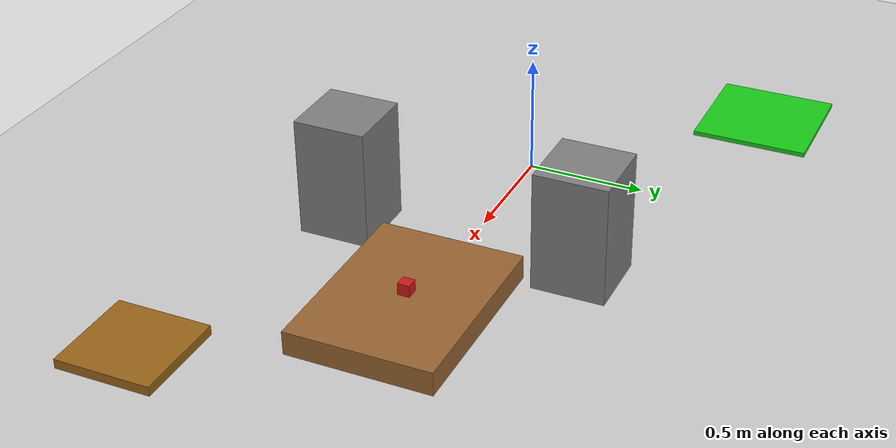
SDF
<?xml version="1.0" ?>
<sdf version="1.6">
  <world name="training_world">

    <include>
      <uri>model://sun</uri>
    </include>

    <include>
      <uri>model://ground_plane</uri>
    </include>

    <!-- Misma física que empty_world -->
    <physics name="default_physics" default="0" type="ode">
      <max_step_size>0.001</max_step_size>
      <real_time_factor>1</real_time_factor>
      <real_time_update_rate>1000</real_time_update_rate>
      <ode>
        <solver>
          <iters>50</iters>
        </solver>
      </ode>
    </physics>

    <!-- PLATAFORMA BAJA (estática)                                        -->
    <!-- 0.8 × 0.6 × 0.10 m  |  pose = centro geométrico                 -->
    <!-- Altura reducida para que la base del robot NO colisione al       -->
    <!-- acercarse. El brazo baja desde EE home (z=0.747) hasta z≈0.125. -->
    <model name="table">
      <static>true</static>
      <pose>1.2 0.0 0.05 0 0 0</pose>
      <link name="link">
        <collision name="collision">
          <geometry>
            <box><size>0.8 0.6 0.10</size></box>
          </geometry>
        </collision>
        <visual name="visual">
          <geometry>
            <box><size>0.8 0.6 0.10</size></box>
          </geometry>
          <material>
            <ambient>0.6 0.4 0.2 1</ambient>
            <diffuse>0.6 0.4 0.2 1</diffuse>
          </material>
        </visual>
      </link>
    </model>

    <!-- CUBO ROJO (dinámico — manipulable)                               -->
    <!-- 0.05 × 0.05 × 0.05 m  |  sobre plataforma: z = 0.10 + 0.025 = 0.125 -->
    <model name="red_cube">
      <pose>1.2 0.0 0.125 0 0 0</pose>
      <link name="link">
        <inertial>
          <mass>0.1</mass>
          <inertia>
            <ixx>4.17e-5</ixx><ixy>0</ixy><ixz>0</ixz>
            <iyy>4.17e-5</iyy><iyz>0</iyz>
            <izz>4.17e-5</izz>
          </inertia>
        </inertial>
        <collision name="collision">
          <geometry>
            <box><size>0.05 0.05 0.05</size></box>
          </geometry>
        </collision>
        <visual name="visual">
          <geometry>
            <box><size>0.05 0.05 0.05</size></box>
          </geometry>
          <material>
            <ambient>0.8 0.1 0.1 1</ambient>
            <diffuse>0.8 0.1 0.1 1</diffuse>
          </material>
        </visual>
      </link>
    </model>

    <!-- BANDEJA / tray (estática — destino de place)                     -->
    <!-- 0.4 × 0.4 × 0.04 m en el suelo                                  -->
    <model name="tray">
      <static>true</static>
      <pose>1.8 -0.8 0.02 0 0 0</pose>
      <link name="link">
        <collision name="collision">
          <geometry>
            <box><size>0.4 0.4 0.04</size></box>
          </geometry>
        </collision>
        <visual name="visual">
          <geometry>
            <box><size>0.4 0.4 0.04</size></box>
          </geometry>
          <material>
            <ambient>0.6 0.4 0.1 1</ambient>
            <diffuse>0.6 0.4 0.1 1</diffuse>
          </material>
        </visual>
      </link>
    </model>

    <!-- ZONA VERDE (estática — destino de navigate)                      -->
    <!-- 0.5 × 0.5 × 0.02 m, marcador plano en el suelo                  -->
    <model name="green_zone">
      <static>true</static>
      <pose>-0.8 0.8 0.01 0 0 0</pose>
      <link name="link">
        <collision name="collision">
          <geometry>
            <box><size>0.5 0.5 0.02</size></box>
          </geometry>
        </collision>
        <visual name="visual">
          <geometry>
            <box><size>0.5 0.5 0.02</size></box>
          </geometry>
          <material>
            <ambient>0.1 0.8 0.1 1</ambient>
            <diffuse>0.1 0.8 0.1 1</diffuse>
          </material>
        </visual>
      </link>
    </model>

    <!-- OBSTÁCULO 1 (estático — izquierda del camino al objetivo)        -->
    <model name="obstacle_1">
      <static>true</static>
      <pose>0.7 0.5 0.25 0 0 0</pose>
      <link name="link">
        <collision name="collision">
          <geometry>
            <box><size>0.3 0.3 0.5</size></box>
          </geometry>
        </collision>
        <visual name="visual">
          <geometry>
            <box><size>0.3 0.3 0.5</size></box>
          </geometry>
          <material>
            <ambient>0.5 0.5 0.5 1</ambient>
            <diffuse>0.5 0.5 0.5 1</diffuse>
          </material>
        </visual>
      </link>
    </model>

    <!-- OBSTÁCULO 2 (estático — derecha del camino al objetivo)          -->
    <model name="obstacle_2">
      <static>true</static>
      <pose>0.7 -0.5 0.25 0 0 0</pose>
      <link name="link">
        <collision name="collision">
          <geometry>
            <box><size>0.3 0.3 0.5</size></box>
          </geometry>
        </collision>
        <visual name="visual">
          <geometry>
            <box><size>0.3 0.3 0.5</size></box>
          </geometry>
          <material>
            <ambient>0.5 0.5 0.5 1</ambient>
            <diffuse>0.5 0.5 0.5 1</diffuse>
          </material>
        </visual>
      </link>
    </model>

  </world>
</sdf>
